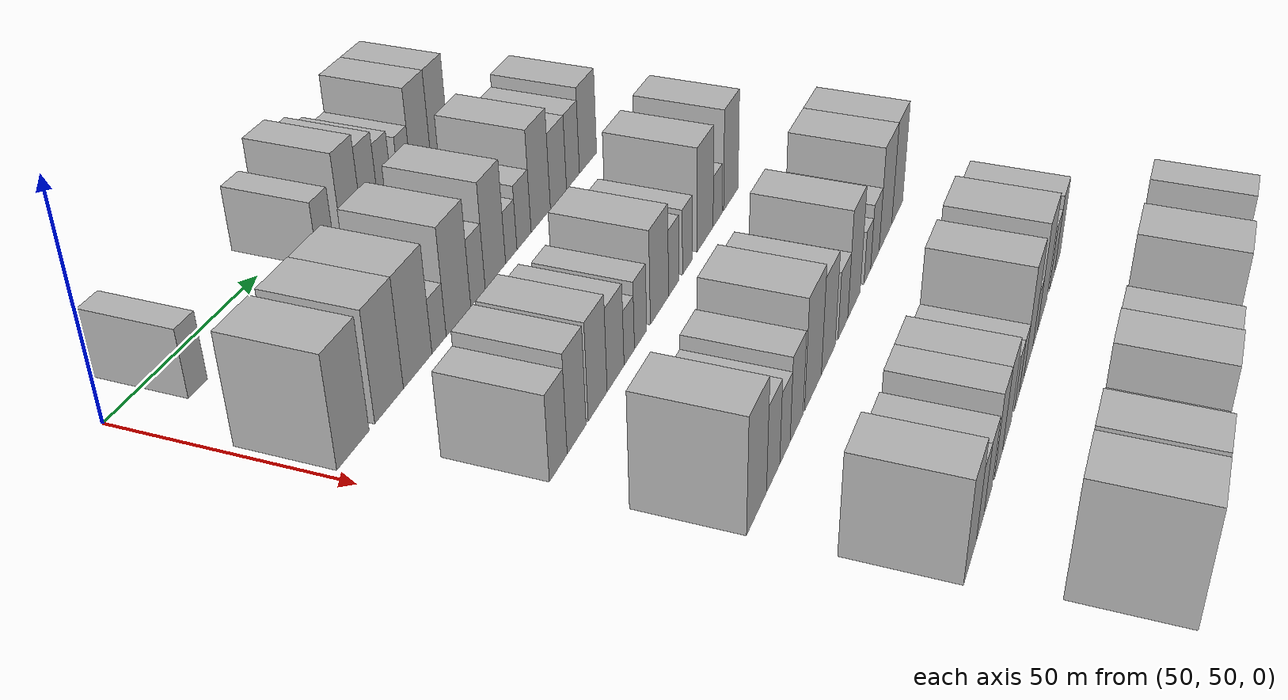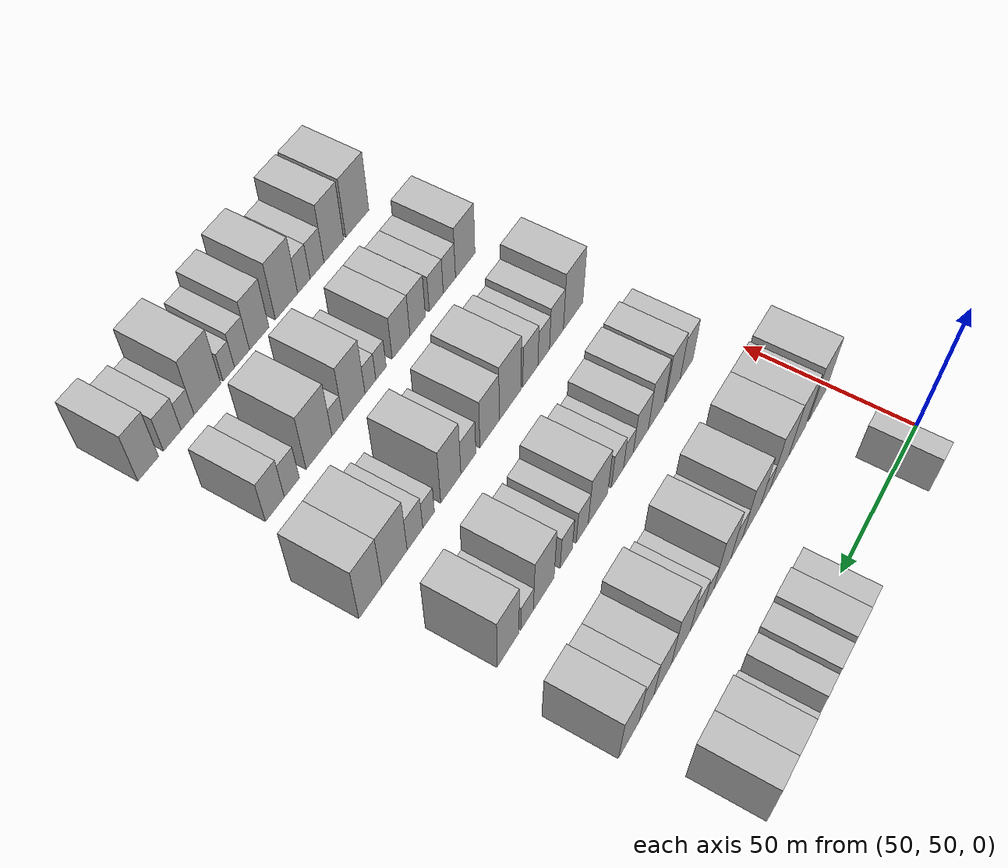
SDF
<sdf version="1.6">
 <world name="default">
  <model name="building_73">
   <static>1</static>
   <pose>50.0000 64.0945 0 0.000000 0.000000 0.000000</pose>
   <link name="link">
    <pose>0 0 7.50 0 0 0</pose>
    <collision name="collision"><geometry><box><size>20.0000 6.0943 15.0000</size></box></geometry></collision>
    <visual name="visual">
     <cast_shadows>0</cast_shadows>
     <geometry><box><size>20.0000 6.0943 15.0000</size></box></geometry>
     <material>
      <script>
       <uri>model://HANNAS_wall/materials/scripts</uri>
       <uri>model://HANNAS_wall/materials/textures</uri>
       <name>vrc/HANNAS_wall</name>
      </script>
     </material>
    </visual>
   </link>
  </model>
  <model name="building_74">
   <static>1</static>
   <pose>50.0000 110.0627 0 0.000000 0.000000 0.000000</pose>
   <link name="link">
    <pose>0 0 7.50 0 0 0</pose>
    <collision name="collision"><geometry><box><size>20.0000 6.6141 15.0000</size></box></geometry></collision>
    <visual name="visual">
     <cast_shadows>0</cast_shadows>
     <geometry><box><size>20.0000 6.6141 15.0000</size></box></geometry>
     <material>
      <script>
       <uri>model://HANNAS_wall/materials/scripts</uri>
       <uri>model://HANNAS_wall/materials/textures</uri>
       <name>vrc/HANNAS_wall</name>
      </script>
     </material>
    </visual>
   </link>
  </model>
  <model name="building_75">
   <static>1</static>
   <pose>50.0000 120.5780 0 0.000000 0.000000 0.000000</pose>
   <link name="link">
    <pose>0 0 10.50 0 0 0</pose>
    <collision name="collision"><geometry><box><size>20.0000 8.4164 21.0000</size></box></geometry></collision>
    <visual name="visual">
     <cast_shadows>0</cast_shadows>
     <geometry><box><size>20.0000 8.4164 21.0000</size></box></geometry>
     <material>
      <script>
       <uri>model://HANNAS_wall/materials/scripts</uri>
       <uri>model://HANNAS_wall/materials/textures</uri>
       <name>vrc/HANNAS_wall</name>
      </script>
     </material>
    </visual>
   </link>
  </model>
  <model name="building_76">
   <static>1</static>
   <pose>50.0000 128.4007 0 0.000000 0.000000 0.000000</pose>
   <link name="link">
    <pose>0 0 9.00 0 0 0</pose>
    <collision name="collision"><geometry><box><size>20.0000 7.2290 18.0000</size></box></geometry></collision>
    <visual name="visual">
     <cast_shadows>0</cast_shadows>
     <geometry><box><size>20.0000 7.2290 18.0000</size></box></geometry>
     <material>
      <script>
       <uri>model://HANNAS_wall/materials/scripts</uri>
       <uri>model://HANNAS_wall/materials/textures</uri>
       <name>vrc/HANNAS_wall</name>
      </script>
     </material>
    </visual>
   </link>
  </model>
  <model name="building_77">
   <static>1</static>
   <pose>50.0000 135.1161 0 0.000000 0.000000 0.000000</pose>
   <link name="link">
    <pose>0 0 7.50 0 0 0</pose>
    <collision name="collision"><geometry><box><size>20.0000 6.2019 15.0000</size></box></geometry></collision>
    <visual name="visual">
     <cast_shadows>0</cast_shadows>
     <geometry><box><size>20.0000 6.2019 15.0000</size></box></geometry>
     <material>
      <script>
       <uri>model://HANNAS_wall/materials/scripts</uri>
       <uri>model://HANNAS_wall/materials/textures</uri>
       <name>vrc/HANNAS_wall</name>
      </script>
     </material>
    </visual>
   </link>
  </model>
  <model name="building_78">
   <static>1</static>
   <pose>50.0000 144.0611 0 0.000000 0.000000 0.000000</pose>
   <link name="link">
    <pose>0 0 6.00 0 0 0</pose>
    <collision name="collision"><geometry><box><size>20.0000 5.6881 12.0000</size></box></geometry></collision>
    <visual name="visual">
     <cast_shadows>0</cast_shadows>
     <geometry><box><size>20.0000 5.6881 12.0000</size></box></geometry>
     <material>
      <script>
       <uri>model://HANNAS_wall/materials/scripts</uri>
       <uri>model://HANNAS_wall/materials/textures</uri>
       <name>vrc/HANNAS_wall</name>
      </script>
     </material>
    </visual>
   </link>
  </model>
  <model name="building_79">
   <static>1</static>
   <pose>50.0000 151.6084 0 0.000000 0.000000 0.000000</pose>
   <link name="link">
    <pose>0 0 10.50 0 0 0</pose>
    <collision name="collision"><geometry><box><size>20.0000 9.4064 21.0000</size></box></geometry></collision>
    <visual name="visual">
     <cast_shadows>0</cast_shadows>
     <geometry><box><size>20.0000 9.4064 21.0000</size></box></geometry>
     <material>
      <script>
       <uri>model://HANNAS_wall/materials/scripts</uri>
       <uri>model://HANNAS_wall/materials/textures</uri>
       <name>vrc/HANNAS_wall</name>
      </script>
     </material>
    </visual>
   </link>
  </model>
  <model name="building_80">
   <static>1</static>
   <pose>50.0000 160.7284 0 0.000000 0.000000 0.000000</pose>
   <link name="link">
    <pose>0 0 10.50 0 0 0</pose>
    <collision name="collision"><geometry><box><size>20.0000 8.8338 21.0000</size></box></geometry></collision>
    <visual name="visual">
     <cast_shadows>0</cast_shadows>
     <geometry><box><size>20.0000 8.8338 21.0000</size></box></geometry>
     <material>
      <script>
       <uri>model://HANNAS_wall/materials/scripts</uri>
       <uri>model://HANNAS_wall/materials/textures</uri>
       <name>vrc/HANNAS_wall</name>
      </script>
     </material>
    </visual>
   </link>
  </model>
  <model name="building_195">
   <static>1</static>
   <pose>85.0000 57.6687 0 0.000000 0.000000 0.000000</pose>
   <link name="link">
    <pose>0 0 12.00 0 0 0</pose>
    <collision name="collision"><geometry><box><size>20.0000 11.2907 24.0000</size></box></geometry></collision>
    <visual name="visual">
     <cast_shadows>0</cast_shadows>
     <geometry><box><size>20.0000 11.2907 24.0000</size></box></geometry>
     <material>
      <script>
       <uri>model://HANNAS_wall/materials/scripts</uri>
       <uri>model://HANNAS_wall/materials/textures</uri>
       <name>vrc/HANNAS_wall</name>
      </script>
     </material>
    </visual>
   </link>
  </model>
  <model name="building_196">
   <static>1</static>
   <pose>85.0000 70.6860 0 0.000000 0.000000 0.000000</pose>
   <link name="link">
    <pose>0 0 12.00 0 0 0</pose>
    <collision name="collision"><geometry><box><size>20.0000 10.7438 24.0000</size></box></geometry></collision>
    <visual name="visual">
     <cast_shadows>0</cast_shadows>
     <geometry><box><size>20.0000 10.7438 24.0000</size></box></geometry>
     <material>
      <script>
       <uri>model://HANNAS_wall/materials/scripts</uri>
       <uri>model://HANNAS_wall/materials/textures</uri>
       <name>vrc/HANNAS_wall</name>
      </script>
     </material>
    </visual>
   </link>
  </model>
  <model name="building_197">
   <static>1</static>
   <pose>85.0000 81.7295 0 0.000000 0.000000 0.000000</pose>
   <link name="link">
    <pose>0 0 12.00 0 0 0</pose>
    <collision name="collision"><geometry><box><size>20.0000 11.3433 24.0000</size></box></geometry></collision>
    <visual name="visual">
     <cast_shadows>0</cast_shadows>
     <geometry><box><size>20.0000 11.3433 24.0000</size></box></geometry>
     <material>
      <script>
       <uri>model://HANNAS_wall/materials/scripts</uri>
       <uri>model://HANNAS_wall/materials/textures</uri>
       <name>vrc/HANNAS_wall</name>
      </script>
     </material>
    </visual>
   </link>
  </model>
  <model name="building_198">
   <static>1</static>
   <pose>85.0000 90.3667 0 0.000000 0.000000 0.000000</pose>
   <link name="link">
    <pose>0 0 6.00 0 0 0</pose>
    <collision name="collision"><geometry><box><size>20.0000 5.9310 12.0000</size></box></geometry></collision>
    <visual name="visual">
     <cast_shadows>0</cast_shadows>
     <geometry><box><size>20.0000 5.9310 12.0000</size></box></geometry>
     <material>
      <script>
       <uri>model://HANNAS_wall/materials/scripts</uri>
       <uri>model://HANNAS_wall/materials/textures</uri>
       <name>vrc/HANNAS_wall</name>
      </script>
     </material>
    </visual>
   </link>
  </model>
  <model name="building_199">
   <static>1</static>
   <pose>85.0000 98.6451 0 0.000000 0.000000 0.000000</pose>
   <link name="link">
    <pose>0 0 12.00 0 0 0</pose>
    <collision name="collision"><geometry><box><size>20.0000 10.6258 24.0000</size></box></geometry></collision>
    <visual name="visual">
     <cast_shadows>0</cast_shadows>
     <geometry><box><size>20.0000 10.6258 24.0000</size></box></geometry>
     <material>
      <script>
       <uri>model://HANNAS_wall/materials/scripts</uri>
       <uri>model://HANNAS_wall/materials/textures</uri>
       <name>vrc/HANNAS_wall</name>
      </script>
     </material>
    </visual>
   </link>
  </model>
  <model name="building_200">
   <static>1</static>
   <pose>85.0000 107.2318 0 0.000000 0.000000 0.000000</pose>
   <link name="link">
    <pose>0 0 7.50 0 0 0</pose>
    <collision name="collision"><geometry><box><size>20.0000 6.5476 15.0000</size></box></geometry></collision>
    <visual name="visual">
     <cast_shadows>0</cast_shadows>
     <geometry><box><size>20.0000 6.5476 15.0000</size></box></geometry>
     <material>
      <script>
       <uri>model://HANNAS_wall/materials/scripts</uri>
       <uri>model://HANNAS_wall/materials/textures</uri>
       <name>vrc/HANNAS_wall</name>
      </script>
     </material>
    </visual>
   </link>
  </model>
  <model name="building_201">
   <static>1</static>
   <pose>85.0000 115.3119 0 0.000000 0.000000 0.000000</pose>
   <link name="link">
    <pose>0 0 12.00 0 0 0</pose>
    <collision name="collision"><geometry><box><size>20.0000 9.6128 24.0000</size></box></geometry></collision>
    <visual name="visual">
     <cast_shadows>0</cast_shadows>
     <geometry><box><size>20.0000 9.6128 24.0000</size></box></geometry>
     <material>
      <script>
       <uri>model://HANNAS_wall/materials/scripts</uri>
       <uri>model://HANNAS_wall/materials/textures</uri>
       <name>vrc/HANNAS_wall</name>
      </script>
     </material>
    </visual>
   </link>
  </model>
  <model name="building_202">
   <static>1</static>
   <pose>85.0000 122.8950 0 0.000000 0.000000 0.000000</pose>
   <link name="link">
    <pose>0 0 6.00 0 0 0</pose>
    <collision name="collision"><geometry><box><size>20.0000 5.5534 12.0000</size></box></geometry></collision>
    <visual name="visual">
     <cast_shadows>0</cast_shadows>
     <geometry><box><size>20.0000 5.5534 12.0000</size></box></geometry>
     <material>
      <script>
       <uri>model://HANNAS_wall/materials/scripts</uri>
       <uri>model://HANNAS_wall/materials/textures</uri>
       <name>vrc/HANNAS_wall</name>
      </script>
     </material>
    </visual>
   </link>
  </model>
  <model name="building_203">
   <static>1</static>
   <pose>85.0000 129.2569 0 0.000000 0.000000 0.000000</pose>
   <link name="link">
    <pose>0 0 7.50 0 0 0</pose>
    <collision name="collision"><geometry><box><size>20.0000 7.1703 15.0000</size></box></geometry></collision>
    <visual name="visual">
     <cast_shadows>0</cast_shadows>
     <geometry><box><size>20.0000 7.1703 15.0000</size></box></geometry>
     <material>
      <script>
       <uri>model://HANNAS_wall/materials/scripts</uri>
       <uri>model://HANNAS_wall/materials/textures</uri>
       <name>vrc/HANNAS_wall</name>
      </script>
     </material>
    </visual>
   </link>
  </model>
  <model name="building_204">
   <static>1</static>
   <pose>85.0000 137.8879 0 0.000000 0.000000 0.000000</pose>
   <link name="link">
    <pose>0 0 12.00 0 0 0</pose>
    <collision name="collision"><geometry><box><size>20.0000 10.0917 24.0000</size></box></geometry></collision>
    <visual name="visual">
     <cast_shadows>0</cast_shadows>
     <geometry><box><size>20.0000 10.0917 24.0000</size></box></geometry>
     <material>
      <script>
       <uri>model://HANNAS_wall/materials/scripts</uri>
       <uri>model://HANNAS_wall/materials/textures</uri>
       <name>vrc/HANNAS_wall</name>
      </script>
     </material>
    </visual>
   </link>
  </model>
  <model name="building_205">
   <static>1</static>
   <pose>85.0000 147.3499 0 0.000000 0.000000 0.000000</pose>
   <link name="link">
    <pose>0 0 9.00 0 0 0</pose>
    <collision name="collision"><geometry><box><size>20.0000 8.8325 18.0000</size></box></geometry></collision>
    <visual name="visual">
     <cast_shadows>0</cast_shadows>
     <geometry><box><size>20.0000 8.8325 18.0000</size></box></geometry>
     <material>
      <script>
       <uri>model://HANNAS_wall/materials/scripts</uri>
       <uri>model://HANNAS_wall/materials/textures</uri>
       <name>vrc/HANNAS_wall</name>
      </script>
     </material>
    </visual>
   </link>
  </model>
  <model name="building_206">
   <static>1</static>
   <pose>85.0000 155.4518 0 0.000000 0.000000 0.000000</pose>
   <link name="link">
    <pose>0 0 9.00 0 0 0</pose>
    <collision name="collision"><geometry><box><size>20.0000 7.3713 18.0000</size></box></geometry></collision>
    <visual name="visual">
     <cast_shadows>0</cast_shadows>
     <geometry><box><size>20.0000 7.3713 18.0000</size></box></geometry>
     <material>
      <script>
       <uri>model://HANNAS_wall/materials/scripts</uri>
       <uri>model://HANNAS_wall/materials/textures</uri>
       <name>vrc/HANNAS_wall</name>
      </script>
     </material>
    </visual>
   </link>
  </model>
  <model name="building_207">
   <static>1</static>
   <pose>85.0000 164.1873 0 0.000000 0.000000 0.000000</pose>
   <link name="link">
    <pose>0 0 10.50 0 0 0</pose>
    <collision name="collision"><geometry><box><size>20.0000 10.0997 21.0000</size></box></geometry></collision>
    <visual name="visual">
     <cast_shadows>0</cast_shadows>
     <geometry><box><size>20.0000 10.0997 21.0000</size></box></geometry>
     <material>
      <script>
       <uri>model://HANNAS_wall/materials/scripts</uri>
       <uri>model://HANNAS_wall/materials/textures</uri>
       <name>vrc/HANNAS_wall</name>
      </script>
     </material>
    </visual>
   </link>
  </model>
  <model name="building_325">
   <static>1</static>
   <pose>120.0000 64.7126 0 0.000000 0.000000 0.000000</pose>
   <link name="link">
    <pose>0 0 9.00 0 0 0</pose>
    <collision name="collision"><geometry><box><size>20.0000 7.6723 18.0000</size></box></geometry></collision>
    <visual name="visual">
     <cast_shadows>0</cast_shadows>
     <geometry><box><size>20.0000 7.6723 18.0000</size></box></geometry>
     <material>
      <script>
       <uri>model://HANNAS_wall/materials/scripts</uri>
       <uri>model://HANNAS_wall/materials/textures</uri>
       <name>vrc/HANNAS_wall</name>
      </script>
     </material>
    </visual>
   </link>
  </model>
  <model name="building_326">
   <static>1</static>
   <pose>120.0000 72.7932 0 0.000000 0.000000 0.000000</pose>
   <link name="link">
    <pose>0 0 10.50 0 0 0</pose>
    <collision name="collision"><geometry><box><size>20.0000 8.4887 21.0000</size></box></geometry></collision>
    <visual name="visual">
     <cast_shadows>0</cast_shadows>
     <geometry><box><size>20.0000 8.4887 21.0000</size></box></geometry>
     <material>
      <script>
       <uri>model://HANNAS_wall/materials/scripts</uri>
       <uri>model://HANNAS_wall/materials/textures</uri>
       <name>vrc/HANNAS_wall</name>
      </script>
     </material>
    </visual>
   </link>
  </model>
  <model name="building_327">
   <static>1</static>
   <pose>120.0000 82.5521 0 0.000000 0.000000 0.000000</pose>
   <link name="link">
    <pose>0 0 10.50 0 0 0</pose>
    <collision name="collision"><geometry><box><size>20.0000 9.0291 21.0000</size></box></geometry></collision>
    <visual name="visual">
     <cast_shadows>0</cast_shadows>
     <geometry><box><size>20.0000 9.0291 21.0000</size></box></geometry>
     <material>
      <script>
       <uri>model://HANNAS_wall/materials/scripts</uri>
       <uri>model://HANNAS_wall/materials/textures</uri>
       <name>vrc/HANNAS_wall</name>
      </script>
     </material>
    </visual>
   </link>
  </model>
  <model name="building_328">
   <static>1</static>
   <pose>120.0000 91.2820 0 0.000000 0.000000 0.000000</pose>
   <link name="link">
    <pose>0 0 9.00 0 0 0</pose>
    <collision name="collision"><geometry><box><size>20.0000 8.4308 18.0000</size></box></geometry></collision>
    <visual name="visual">
     <cast_shadows>0</cast_shadows>
     <geometry><box><size>20.0000 8.4308 18.0000</size></box></geometry>
     <material>
      <script>
       <uri>model://HANNAS_wall/materials/scripts</uri>
       <uri>model://HANNAS_wall/materials/textures</uri>
       <name>vrc/HANNAS_wall</name>
      </script>
     </material>
    </visual>
   </link>
  </model>
  <model name="building_329">
   <static>1</static>
   <pose>120.0000 98.1889 0 0.000000 0.000000 0.000000</pose>
   <link name="link">
    <pose>0 0 6.00 0 0 0</pose>
    <collision name="collision"><geometry><box><size>20.0000 5.3831 12.0000</size></box></geometry></collision>
    <visual name="visual">
     <cast_shadows>0</cast_shadows>
     <geometry><box><size>20.0000 5.3831 12.0000</size></box></geometry>
     <material>
      <script>
       <uri>model://HANNAS_wall/materials/scripts</uri>
       <uri>model://HANNAS_wall/materials/textures</uri>
       <name>vrc/HANNAS_wall</name>
      </script>
     </material>
    </visual>
   </link>
  </model>
  <model name="building_330">
   <static>1</static>
   <pose>120.0000 104.1466 0 0.000000 0.000000 0.000000</pose>
   <link name="link">
    <pose>0 0 7.50 0 0 0</pose>
    <collision name="collision"><geometry><box><size>20.0000 6.5323 15.0000</size></box></geometry></collision>
    <visual name="visual">
     <cast_shadows>0</cast_shadows>
     <geometry><box><size>20.0000 6.5323 15.0000</size></box></geometry>
     <material>
      <script>
       <uri>model://HANNAS_wall/materials/scripts</uri>
       <uri>model://HANNAS_wall/materials/textures</uri>
       <name>vrc/HANNAS_wall</name>
      </script>
     </material>
    </visual>
   </link>
  </model>
  <model name="building_331">
   <static>1</static>
   <pose>120.0000 114.5435 0 0.000000 0.000000 0.000000</pose>
   <link name="link">
    <pose>0 0 10.50 0 0 0</pose>
    <collision name="collision"><geometry><box><size>20.0000 10.2615 21.0000</size></box></geometry></collision>
    <visual name="visual">
     <cast_shadows>0</cast_shadows>
     <geometry><box><size>20.0000 10.2615 21.0000</size></box></geometry>
     <material>
      <script>
       <uri>model://HANNAS_wall/materials/scripts</uri>
       <uri>model://HANNAS_wall/materials/textures</uri>
       <name>vrc/HANNAS_wall</name>
      </script>
     </material>
    </visual>
   </link>
  </model>
  <model name="building_332">
   <static>1</static>
   <pose>120.0000 122.7810 0 0.000000 0.000000 0.000000</pose>
   <link name="link">
    <pose>0 0 7.50 0 0 0</pose>
    <collision name="collision"><geometry><box><size>20.0000 6.2135 15.0000</size></box></geometry></collision>
    <visual name="visual">
     <cast_shadows>0</cast_shadows>
     <geometry><box><size>20.0000 6.2135 15.0000</size></box></geometry>
     <material>
      <script>
       <uri>model://HANNAS_wall/materials/scripts</uri>
       <uri>model://HANNAS_wall/materials/textures</uri>
       <name>vrc/HANNAS_wall</name>
      </script>
     </material>
    </visual>
   </link>
  </model>
  <model name="building_333">
   <static>1</static>
   <pose>120.0000 130.9473 0 0.000000 0.000000 0.000000</pose>
   <link name="link">
    <pose>0 0 7.50 0 0 0</pose>
    <collision name="collision"><geometry><box><size>20.0000 6.1190 15.0000</size></box></geometry></collision>
    <visual name="visual">
     <cast_shadows>0</cast_shadows>
     <geometry><box><size>20.0000 6.1190 15.0000</size></box></geometry>
     <material>
      <script>
       <uri>model://HANNAS_wall/materials/scripts</uri>
       <uri>model://HANNAS_wall/materials/textures</uri>
       <name>vrc/HANNAS_wall</name>
      </script>
     </material>
    </visual>
   </link>
  </model>
  <model name="building_334">
   <static>1</static>
   <pose>120.0000 142.0840 0 0.000000 0.000000 0.000000</pose>
   <link name="link">
    <pose>0 0 12.00 0 0 0</pose>
    <collision name="collision"><geometry><box><size>20.0000 10.1546 24.0000</size></box></geometry></collision>
    <visual name="visual">
     <cast_shadows>0</cast_shadows>
     <geometry><box><size>20.0000 10.1546 24.0000</size></box></geometry>
     <material>
      <script>
       <uri>model://HANNAS_wall/materials/scripts</uri>
       <uri>model://HANNAS_wall/materials/textures</uri>
       <name>vrc/HANNAS_wall</name>
      </script>
     </material>
    </visual>
   </link>
  </model>
  <model name="building_335">
   <static>1</static>
   <pose>120.0000 150.1508 0 0.000000 0.000000 0.000000</pose>
   <link name="link">
    <pose>0 0 6.00 0 0 0</pose>
    <collision name="collision"><geometry><box><size>20.0000 5.9790 12.0000</size></box></geometry></collision>
    <visual name="visual">
     <cast_shadows>0</cast_shadows>
     <geometry><box><size>20.0000 5.9790 12.0000</size></box></geometry>
     <material>
      <script>
       <uri>model://HANNAS_wall/materials/scripts</uri>
       <uri>model://HANNAS_wall/materials/textures</uri>
       <name>vrc/HANNAS_wall</name>
      </script>
     </material>
    </visual>
   </link>
  </model>
  <model name="building_336">
   <static>1</static>
   <pose>120.0000 159.1899 0 0.000000 0.000000 0.000000</pose>
   <link name="link">
    <pose>0 0 12.00 0 0 0</pose>
    <collision name="collision"><geometry><box><size>20.0000 10.0991 24.0000</size></box></geometry></collision>
    <visual name="visual">
     <cast_shadows>0</cast_shadows>
     <geometry><box><size>20.0000 10.0991 24.0000</size></box></geometry>
     <material>
      <script>
       <uri>model://HANNAS_wall/materials/scripts</uri>
       <uri>model://HANNAS_wall/materials/textures</uri>
       <name>vrc/HANNAS_wall</name>
      </script>
     </material>
    </visual>
   </link>
  </model>
  <model name="building_452">
   <static>1</static>
   <pose>155.0000 64.4602 0 0.000000 0.000000 0.000000</pose>
   <link name="link">
    <pose>0 0 12.00 0 0 0</pose>
    <collision name="collision"><geometry><box><size>20.0000 11.0237 24.0000</size></box></geometry></collision>
    <visual name="visual">
     <cast_shadows>0</cast_shadows>
     <geometry><box><size>20.0000 11.0237 24.0000</size></box></geometry>
     <material>
      <script>
       <uri>model://HANNAS_wall/materials/scripts</uri>
       <uri>model://HANNAS_wall/materials/textures</uri>
       <name>vrc/HANNAS_wall</name>
      </script>
     </material>
    </visual>
   </link>
  </model>
  <model name="building_453">
   <static>1</static>
   <pose>155.0000 73.8370 0 0.000000 0.000000 0.000000</pose>
   <link name="link">
    <pose>0 0 9.00 0 0 0</pose>
    <collision name="collision"><geometry><box><size>20.0000 7.7299 18.0000</size></box></geometry></collision>
    <visual name="visual">
     <cast_shadows>0</cast_shadows>
     <geometry><box><size>20.0000 7.7299 18.0000</size></box></geometry>
     <material>
      <script>
       <uri>model://HANNAS_wall/materials/scripts</uri>
       <uri>model://HANNAS_wall/materials/textures</uri>
       <name>vrc/HANNAS_wall</name>
      </script>
     </material>
    </visual>
   </link>
  </model>
  <model name="building_454">
   <static>1</static>
   <pose>155.0000 80.8518 0 0.000000 0.000000 0.000000</pose>
   <link name="link">
    <pose>0 0 7.50 0 0 0</pose>
    <collision name="collision"><geometry><box><size>20.0000 6.2996 15.0000</size></box></geometry></collision>
    <visual name="visual">
     <cast_shadows>0</cast_shadows>
     <geometry><box><size>20.0000 6.2996 15.0000</size></box></geometry>
     <material>
      <script>
       <uri>model://HANNAS_wall/materials/scripts</uri>
       <uri>model://HANNAS_wall/materials/textures</uri>
       <name>vrc/HANNAS_wall</name>
      </script>
     </material>
    </visual>
   </link>
  </model>
  <model name="building_455">
   <static>1</static>
   <pose>155.0000 88.0606 0 0.000000 0.000000 0.000000</pose>
   <link name="link">
    <pose>0 0 9.00 0 0 0</pose>
    <collision name="collision"><geometry><box><size>20.0000 8.1180 18.0000</size></box></geometry></collision>
    <visual name="visual">
     <cast_shadows>0</cast_shadows>
     <geometry><box><size>20.0000 8.1180 18.0000</size></box></geometry>
     <material>
      <script>
       <uri>model://HANNAS_wall/materials/scripts</uri>
       <uri>model://HANNAS_wall/materials/textures</uri>
       <name>vrc/HANNAS_wall</name>
      </script>
     </material>
    </visual>
   </link>
  </model>
  <model name="building_456">
   <static>1</static>
   <pose>155.0000 98.7654 0 0.000000 0.000000 0.000000</pose>
   <link name="link">
    <pose>0 0 12.00 0 0 0</pose>
    <collision name="collision"><geometry><box><size>20.0000 11.2916 24.0000</size></box></geometry></collision>
    <visual name="visual">
     <cast_shadows>0</cast_shadows>
     <geometry><box><size>20.0000 11.2916 24.0000</size></box></geometry>
     <material>
      <script>
       <uri>model://HANNAS_wall/materials/scripts</uri>
       <uri>model://HANNAS_wall/materials/textures</uri>
       <name>vrc/HANNAS_wall</name>
      </script>
     </material>
    </visual>
   </link>
  </model>
  <model name="building_457">
   <static>1</static>
   <pose>155.0000 109.2866 0 0.000000 0.000000 0.000000</pose>
   <link name="link">
    <pose>0 0 10.50 0 0 0</pose>
    <collision name="collision"><geometry><box><size>20.0000 9.7509 21.0000</size></box></geometry></collision>
    <visual name="visual">
     <cast_shadows>0</cast_shadows>
     <geometry><box><size>20.0000 9.7509 21.0000</size></box></geometry>
     <material>
      <script>
       <uri>model://HANNAS_wall/materials/scripts</uri>
       <uri>model://HANNAS_wall/materials/textures</uri>
       <name>vrc/HANNAS_wall</name>
      </script>
     </material>
    </visual>
   </link>
  </model>
  <model name="building_458">
   <static>1</static>
   <pose>155.0000 119.8624 0 0.000000 0.000000 0.000000</pose>
   <link name="link">
    <pose>0 0 7.50 0 0 0</pose>
    <collision name="collision"><geometry><box><size>20.0000 7.4007 15.0000</size></box></geometry></collision>
    <visual name="visual">
     <cast_shadows>0</cast_shadows>
     <geometry><box><size>20.0000 7.4007 15.0000</size></box></geometry>
     <material>
      <script>
       <uri>model://HANNAS_wall/materials/scripts</uri>
       <uri>model://HANNAS_wall/materials/textures</uri>
       <name>vrc/HANNAS_wall</name>
      </script>
     </material>
    </visual>
   </link>
  </model>
  <model name="building_459">
   <static>1</static>
   <pose>155.0000 128.4207 0 0.000000 0.000000 0.000000</pose>
   <link name="link">
    <pose>0 0 12.00 0 0 0</pose>
    <collision name="collision"><geometry><box><size>20.0000 9.7159 24.0000</size></box></geometry></collision>
    <visual name="visual">
     <cast_shadows>0</cast_shadows>
     <geometry><box><size>20.0000 9.7159 24.0000</size></box></geometry>
     <material>
      <script>
       <uri>model://HANNAS_wall/materials/scripts</uri>
       <uri>model://HANNAS_wall/materials/textures</uri>
       <name>vrc/HANNAS_wall</name>
      </script>
     </material>
    </visual>
   </link>
  </model>
  <model name="building_460">
   <static>1</static>
   <pose>155.0000 139.0124 0 0.000000 0.000000 0.000000</pose>
   <link name="link">
    <pose>0 0 6.00 0 0 0</pose>
    <collision name="collision"><geometry><box><size>20.0000 5.4675 12.0000</size></box></geometry></collision>
    <visual name="visual">
     <cast_shadows>0</cast_shadows>
     <geometry><box><size>20.0000 5.4675 12.0000</size></box></geometry>
     <material>
      <script>
       <uri>model://HANNAS_wall/materials/scripts</uri>
       <uri>model://HANNAS_wall/materials/textures</uri>
       <name>vrc/HANNAS_wall</name>
      </script>
     </material>
    </visual>
   </link>
  </model>
  <model name="building_461">
   <static>1</static>
   <pose>155.0000 145.3416 0 0.000000 0.000000 0.000000</pose>
   <link name="link">
    <pose>0 0 7.50 0 0 0</pose>
    <collision name="collision"><geometry><box><size>20.0000 7.1909 15.0000</size></box></geometry></collision>
    <visual name="visual">
     <cast_shadows>0</cast_shadows>
     <geometry><box><size>20.0000 7.1909 15.0000</size></box></geometry>
     <material>
      <script>
       <uri>model://HANNAS_wall/materials/scripts</uri>
       <uri>model://HANNAS_wall/materials/textures</uri>
       <name>vrc/HANNAS_wall</name>
      </script>
     </material>
    </visual>
   </link>
  </model>
  <model name="building_462">
   <static>1</static>
   <pose>155.0000 154.5885 0 0.000000 0.000000 0.000000</pose>
   <link name="link">
    <pose>0 0 12.00 0 0 0</pose>
    <collision name="collision"><geometry><box><size>20.0000 11.3027 24.0000</size></box></geometry></collision>
    <visual name="visual">
     <cast_shadows>0</cast_shadows>
     <geometry><box><size>20.0000 11.3027 24.0000</size></box></geometry>
     <material>
      <script>
       <uri>model://HANNAS_wall/materials/scripts</uri>
       <uri>model://HANNAS_wall/materials/textures</uri>
       <name>vrc/HANNAS_wall</name>
      </script>
     </material>
    </visual>
   </link>
  </model>
  <model name="building_463">
   <static>1</static>
   <pose>155.0000 165.2993 0 0.000000 0.000000 0.000000</pose>
   <link name="link">
    <pose>0 0 12.00 0 0 0</pose>
    <collision name="collision"><geometry><box><size>20.0000 10.1190 24.0000</size></box></geometry></collision>
    <visual name="visual">
     <cast_shadows>0</cast_shadows>
     <geometry><box><size>20.0000 10.1190 24.0000</size></box></geometry>
     <material>
      <script>
       <uri>model://HANNAS_wall/materials/scripts</uri>
       <uri>model://HANNAS_wall/materials/textures</uri>
       <name>vrc/HANNAS_wall</name>
      </script>
     </material>
    </visual>
   </link>
  </model>
  <model name="building_577">
   <static>1</static>
   <pose>190.0000 64.2897 0 0.000000 0.000000 0.000000</pose>
   <link name="link">
    <pose>0 0 10.50 0 0 0</pose>
    <collision name="collision"><geometry><box><size>20.0000 10.4849 21.0000</size></box></geometry></collision>
    <visual name="visual">
     <cast_shadows>0</cast_shadows>
     <geometry><box><size>20.0000 10.4849 21.0000</size></box></geometry>
     <material>
      <script>
       <uri>model://HANNAS_wall/materials/scripts</uri>
       <uri>model://HANNAS_wall/materials/textures</uri>
       <name>vrc/HANNAS_wall</name>
      </script>
     </material>
    </visual>
   </link>
  </model>
  <model name="building_578">
   <static>1</static>
   <pose>190.0000 72.7814 0 0.000000 0.000000 0.000000</pose>
   <link name="link">
    <pose>0 0 7.50 0 0 0</pose>
    <collision name="collision"><geometry><box><size>20.0000 6.4983 15.0000</size></box></geometry></collision>
    <visual name="visual">
     <cast_shadows>0</cast_shadows>
     <geometry><box><size>20.0000 6.4983 15.0000</size></box></geometry>
     <material>
      <script>
       <uri>model://HANNAS_wall/materials/scripts</uri>
       <uri>model://HANNAS_wall/materials/textures</uri>
       <name>vrc/HANNAS_wall</name>
      </script>
     </material>
    </visual>
   </link>
  </model>
  <model name="building_579">
   <static>1</static>
   <pose>190.0000 79.6654 0 0.000000 0.000000 0.000000</pose>
   <link name="link">
    <pose>0 0 7.50 0 0 0</pose>
    <collision name="collision"><geometry><box><size>20.0000 7.2698 15.0000</size></box></geometry></collision>
    <visual name="visual">
     <cast_shadows>0</cast_shadows>
     <geometry><box><size>20.0000 7.2698 15.0000</size></box></geometry>
     <material>
      <script>
       <uri>model://HANNAS_wall/materials/scripts</uri>
       <uri>model://HANNAS_wall/materials/textures</uri>
       <name>vrc/HANNAS_wall</name>
      </script>
     </material>
    </visual>
   </link>
  </model>
  <model name="building_580">
   <static>1</static>
   <pose>190.0000 89.2399 0 0.000000 0.000000 0.000000</pose>
   <link name="link">
    <pose>0 0 9.00 0 0 0</pose>
    <collision name="collision"><geometry><box><size>20.0000 7.8791 18.0000</size></box></geometry></collision>
    <visual name="visual">
     <cast_shadows>0</cast_shadows>
     <geometry><box><size>20.0000 7.8791 18.0000</size></box></geometry>
     <material>
      <script>
       <uri>model://HANNAS_wall/materials/scripts</uri>
       <uri>model://HANNAS_wall/materials/textures</uri>
       <name>vrc/HANNAS_wall</name>
      </script>
     </material>
    </visual>
   </link>
  </model>
  <model name="building_581">
   <static>1</static>
   <pose>190.0000 97.6151 0 0.000000 0.000000 0.000000</pose>
   <link name="link">
    <pose>0 0 9.00 0 0 0</pose>
    <collision name="collision"><geometry><box><size>20.0000 8.8714 18.0000</size></box></geometry></collision>
    <visual name="visual">
     <cast_shadows>0</cast_shadows>
     <geometry><box><size>20.0000 8.8714 18.0000</size></box></geometry>
     <material>
      <script>
       <uri>model://HANNAS_wall/materials/scripts</uri>
       <uri>model://HANNAS_wall/materials/textures</uri>
       <name>vrc/HANNAS_wall</name>
      </script>
     </material>
    </visual>
   </link>
  </model>
  <model name="building_582">
   <static>1</static>
   <pose>190.0000 107.5536 0 0.000000 0.000000 0.000000</pose>
   <link name="link">
    <pose>0 0 6.00 0 0 0</pose>
    <collision name="collision"><geometry><box><size>20.0000 5.0058 12.0000</size></box></geometry></collision>
    <visual name="visual">
     <cast_shadows>0</cast_shadows>
     <geometry><box><size>20.0000 5.0058 12.0000</size></box></geometry>
     <material>
      <script>
       <uri>model://HANNAS_wall/materials/scripts</uri>
       <uri>model://HANNAS_wall/materials/textures</uri>
       <name>vrc/HANNAS_wall</name>
      </script>
     </material>
    </visual>
   </link>
  </model>
  <model name="building_583">
   <static>1</static>
   <pose>190.0000 112.6607 0 0.000000 0.000000 0.000000</pose>
   <link name="link">
    <pose>0 0 6.00 0 0 0</pose>
    <collision name="collision"><geometry><box><size>20.0000 5.2084 12.0000</size></box></geometry></collision>
    <visual name="visual">
     <cast_shadows>0</cast_shadows>
     <geometry><box><size>20.0000 5.2084 12.0000</size></box></geometry>
     <material>
      <script>
       <uri>model://HANNAS_wall/materials/scripts</uri>
       <uri>model://HANNAS_wall/materials/textures</uri>
       <name>vrc/HANNAS_wall</name>
      </script>
     </material>
    </visual>
   </link>
  </model>
  <model name="building_584">
   <static>1</static>
   <pose>190.0000 120.3631 0 0.000000 0.000000 0.000000</pose>
   <link name="link">
    <pose>0 0 12.00 0 0 0</pose>
    <collision name="collision"><geometry><box><size>20.0000 10.1964 24.0000</size></box></geometry></collision>
    <visual name="visual">
     <cast_shadows>0</cast_shadows>
     <geometry><box><size>20.0000 10.1964 24.0000</size></box></geometry>
     <material>
      <script>
       <uri>model://HANNAS_wall/materials/scripts</uri>
       <uri>model://HANNAS_wall/materials/textures</uri>
       <name>vrc/HANNAS_wall</name>
      </script>
     </material>
    </visual>
   </link>
  </model>
  <model name="building_585">
   <static>1</static>
   <pose>190.0000 128.1050 0 0.000000 0.000000 0.000000</pose>
   <link name="link">
    <pose>0 0 6.00 0 0 0</pose>
    <collision name="collision"><geometry><box><size>20.0000 5.2873 12.0000</size></box></geometry></collision>
    <visual name="visual">
     <cast_shadows>0</cast_shadows>
     <geometry><box><size>20.0000 5.2873 12.0000</size></box></geometry>
     <material>
      <script>
       <uri>model://HANNAS_wall/materials/scripts</uri>
       <uri>model://HANNAS_wall/materials/textures</uri>
       <name>vrc/HANNAS_wall</name>
      </script>
     </material>
    </visual>
   </link>
  </model>
  <model name="building_586">
   <static>1</static>
   <pose>190.0000 136.6140 0 0.000000 0.000000 0.000000</pose>
   <link name="link">
    <pose>0 0 12.00 0 0 0</pose>
    <collision name="collision"><geometry><box><size>20.0000 11.7307 24.0000</size></box></geometry></collision>
    <visual name="visual">
     <cast_shadows>0</cast_shadows>
     <geometry><box><size>20.0000 11.7307 24.0000</size></box></geometry>
     <material>
      <script>
       <uri>model://HANNAS_wall/materials/scripts</uri>
       <uri>model://HANNAS_wall/materials/textures</uri>
       <name>vrc/HANNAS_wall</name>
      </script>
     </material>
    </visual>
   </link>
  </model>
  <model name="building_587">
   <static>1</static>
   <pose>190.0000 148.7653 0 0.000000 0.000000 0.000000</pose>
   <link name="link">
    <pose>0 0 7.50 0 0 0</pose>
    <collision name="collision"><geometry><box><size>20.0000 6.5719 15.0000</size></box></geometry></collision>
    <visual name="visual">
     <cast_shadows>0</cast_shadows>
     <geometry><box><size>20.0000 6.5719 15.0000</size></box></geometry>
     <material>
      <script>
       <uri>model://HANNAS_wall/materials/scripts</uri>
       <uri>model://HANNAS_wall/materials/textures</uri>
       <name>vrc/HANNAS_wall</name>
      </script>
     </material>
    </visual>
   </link>
  </model>
  <model name="building_588">
   <static>1</static>
   <pose>190.0000 156.1184 0 0.000000 0.000000 0.000000</pose>
   <link name="link">
    <pose>0 0 9.00 0 0 0</pose>
    <collision name="collision"><geometry><box><size>20.0000 8.1342 18.0000</size></box></geometry></collision>
    <visual name="visual">
     <cast_shadows>0</cast_shadows>
     <geometry><box><size>20.0000 8.1342 18.0000</size></box></geometry>
     <material>
      <script>
       <uri>model://HANNAS_wall/materials/scripts</uri>
       <uri>model://HANNAS_wall/materials/textures</uri>
       <name>vrc/HANNAS_wall</name>
      </script>
     </material>
    </visual>
   </link>
  </model>
  <model name="building_704">
   <static>1</static>
   <pose>225.0000 66.8755 0 0.000000 0.000000 0.000000</pose>
   <link name="link">
    <pose>0 0 12.00 0 0 0</pose>
    <collision name="collision"><geometry><box><size>20.0000 11.9352 24.0000</size></box></geometry></collision>
    <visual name="visual">
     <cast_shadows>0</cast_shadows>
     <geometry><box><size>20.0000 11.9352 24.0000</size></box></geometry>
     <material>
      <script>
       <uri>model://HANNAS_wall/materials/scripts</uri>
       <uri>model://HANNAS_wall/materials/textures</uri>
       <name>vrc/HANNAS_wall</name>
      </script>
     </material>
    </visual>
   </link>
  </model>
  <model name="building_705">
   <static>1</static>
   <pose>225.0000 78.8212 0 0.000000 0.000000 0.000000</pose>
   <link name="link">
    <pose>0 0 12.00 0 0 0</pose>
    <collision name="collision"><geometry><box><size>20.0000 9.9562 24.0000</size></box></geometry></collision>
    <visual name="visual">
     <cast_shadows>0</cast_shadows>
     <geometry><box><size>20.0000 9.9562 24.0000</size></box></geometry>
     <material>
      <script>
       <uri>model://HANNAS_wall/materials/scripts</uri>
       <uri>model://HANNAS_wall/materials/textures</uri>
       <name>vrc/HANNAS_wall</name>
      </script>
     </material>
    </visual>
   </link>
  </model>
  <model name="building_706">
   <static>1</static>
   <pose>225.0000 87.1979 0 0.000000 0.000000 0.000000</pose>
   <link name="link">
    <pose>0 0 7.50 0 0 0</pose>
    <collision name="collision"><geometry><box><size>20.0000 6.7972 15.0000</size></box></geometry></collision>
    <visual name="visual">
     <cast_shadows>0</cast_shadows>
     <geometry><box><size>20.0000 6.7972 15.0000</size></box></geometry>
     <material>
      <script>
       <uri>model://HANNAS_wall/materials/scripts</uri>
       <uri>model://HANNAS_wall/materials/textures</uri>
       <name>vrc/HANNAS_wall</name>
      </script>
     </material>
    </visual>
   </link>
  </model>
  <model name="building_707">
   <static>1</static>
   <pose>225.0000 93.6147 0 0.000000 0.000000 0.000000</pose>
   <link name="link">
    <pose>0 0 7.50 0 0 0</pose>
    <collision name="collision"><geometry><box><size>20.0000 6.0365 15.0000</size></box></geometry></collision>
    <visual name="visual">
     <cast_shadows>0</cast_shadows>
     <geometry><box><size>20.0000 6.0365 15.0000</size></box></geometry>
     <material>
      <script>
       <uri>model://HANNAS_wall/materials/scripts</uri>
       <uri>model://HANNAS_wall/materials/textures</uri>
       <name>vrc/HANNAS_wall</name>
      </script>
     </material>
    </visual>
   </link>
  </model>
  <model name="building_708">
   <static>1</static>
   <pose>225.0000 101.9637 0 0.000000 0.000000 0.000000</pose>
   <link name="link">
    <pose>0 0 12.00 0 0 0</pose>
    <collision name="collision"><geometry><box><size>20.0000 10.6616 24.0000</size></box></geometry></collision>
    <visual name="visual">
     <cast_shadows>0</cast_shadows>
     <geometry><box><size>20.0000 10.6616 24.0000</size></box></geometry>
     <material>
      <script>
       <uri>model://HANNAS_wall/materials/scripts</uri>
       <uri>model://HANNAS_wall/materials/textures</uri>
       <name>vrc/HANNAS_wall</name>
      </script>
     </material>
    </visual>
   </link>
  </model>
  <model name="building_709">
   <static>1</static>
   <pose>225.0000 114.7588 0 0.000000 0.000000 0.000000</pose>
   <link name="link">
    <pose>0 0 10.50 0 0 0</pose>
    <collision name="collision"><geometry><box><size>20.0000 8.9286 21.0000</size></box></geometry></collision>
    <visual name="visual">
     <cast_shadows>0</cast_shadows>
     <geometry><box><size>20.0000 8.9286 21.0000</size></box></geometry>
     <material>
      <script>
       <uri>model://HANNAS_wall/materials/scripts</uri>
       <uri>model://HANNAS_wall/materials/textures</uri>
       <name>vrc/HANNAS_wall</name>
      </script>
     </material>
    </visual>
   </link>
  </model>
  <model name="building_710">
   <static>1</static>
   <pose>225.0000 122.6230 0 0.000000 0.000000 0.000000</pose>
   <link name="link">
    <pose>0 0 7.50 0 0 0</pose>
    <collision name="collision"><geometry><box><size>20.0000 6.7998 15.0000</size></box></geometry></collision>
    <visual name="visual">
     <cast_shadows>0</cast_shadows>
     <geometry><box><size>20.0000 6.7998 15.0000</size></box></geometry>
     <material>
      <script>
       <uri>model://HANNAS_wall/materials/scripts</uri>
       <uri>model://HANNAS_wall/materials/textures</uri>
       <name>vrc/HANNAS_wall</name>
      </script>
     </material>
    </visual>
   </link>
  </model>
  <model name="building_711">
   <static>1</static>
   <pose>225.0000 128.5813 0 0.000000 0.000000 0.000000</pose>
   <link name="link">
    <pose>0 0 6.00 0 0 0</pose>
    <collision name="collision"><geometry><box><size>20.0000 5.1168 12.0000</size></box></geometry></collision>
    <visual name="visual">
     <cast_shadows>0</cast_shadows>
     <geometry><box><size>20.0000 5.1168 12.0000</size></box></geometry>
     <material>
      <script>
       <uri>model://HANNAS_wall/materials/scripts</uri>
       <uri>model://HANNAS_wall/materials/textures</uri>
       <name>vrc/HANNAS_wall</name>
      </script>
     </material>
    </visual>
   </link>
  </model>
  <model name="building_712">
   <static>1</static>
   <pose>225.0000 137.9429 0 0.000000 0.000000 0.000000</pose>
   <link name="link">
    <pose>0 0 12.00 0 0 0</pose>
    <collision name="collision"><geometry><box><size>20.0000 11.6063 24.0000</size></box></geometry></collision>
    <visual name="visual">
     <cast_shadows>0</cast_shadows>
     <geometry><box><size>20.0000 11.6063 24.0000</size></box></geometry>
     <material>
      <script>
       <uri>model://HANNAS_wall/materials/scripts</uri>
       <uri>model://HANNAS_wall/materials/textures</uri>
       <name>vrc/HANNAS_wall</name>
      </script>
     </material>
    </visual>
   </link>
  </model>
  <model name="building_713">
   <static>1</static>
   <pose>225.0000 146.5220 0 0.000000 0.000000 0.000000</pose>
   <link name="link">
    <pose>0 0 6.00 0 0 0</pose>
    <collision name="collision"><geometry><box><size>20.0000 5.5520 12.0000</size></box></geometry></collision>
    <visual name="visual">
     <cast_shadows>0</cast_shadows>
     <geometry><box><size>20.0000 5.5520 12.0000</size></box></geometry>
     <material>
      <script>
       <uri>model://HANNAS_wall/materials/scripts</uri>
       <uri>model://HANNAS_wall/materials/textures</uri>
       <name>vrc/HANNAS_wall</name>
      </script>
     </material>
    </visual>
   </link>
  </model>
  <model name="building_714">
   <static>1</static>
   <pose>225.0000 153.0020 0 0.000000 0.000000 0.000000</pose>
   <link name="link">
    <pose>0 0 7.50 0 0 0</pose>
    <collision name="collision"><geometry><box><size>20.0000 7.4078 15.0000</size></box></geometry></collision>
    <visual name="visual">
     <cast_shadows>0</cast_shadows>
     <geometry><box><size>20.0000 7.4078 15.0000</size></box></geometry>
     <material>
      <script>
       <uri>model://HANNAS_wall/materials/scripts</uri>
       <uri>model://HANNAS_wall/materials/textures</uri>
       <name>vrc/HANNAS_wall</name>
      </script>
     </material>
    </visual>
   </link>
  </model>
  <model name="building_715">
   <static>1</static>
   <pose>225.0000 162.9536 0 0.000000 0.000000 0.000000</pose>
   <link name="link">
    <pose>0 0 10.50 0 0 0</pose>
    <collision name="collision"><geometry><box><size>20.0000 8.4955 21.0000</size></box></geometry></collision>
    <visual name="visual">
     <cast_shadows>0</cast_shadows>
     <geometry><box><size>20.0000 8.4955 21.0000</size></box></geometry>
     <material>
      <script>
       <uri>model://HANNAS_wall/materials/scripts</uri>
       <uri>model://HANNAS_wall/materials/textures</uri>
       <name>vrc/HANNAS_wall</name>
      </script>
     </material>
    </visual>
   </link>
  </model>
 </world>
</sdf>
